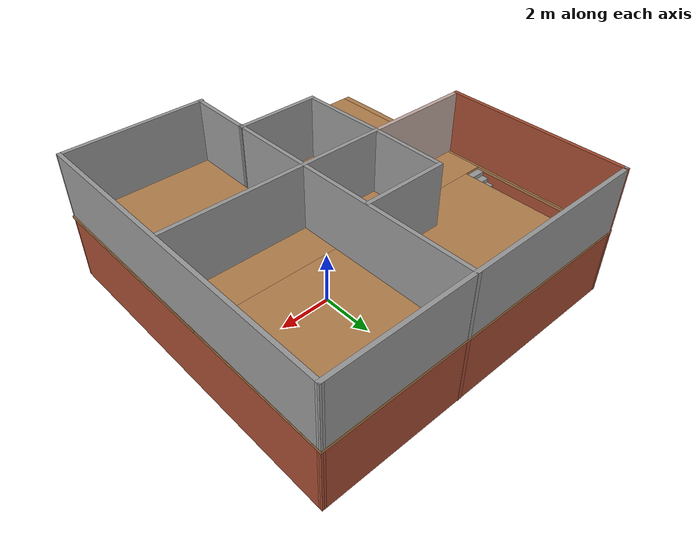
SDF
<?xml version='1.0'?>
<sdf version='1.6'>
  <model name='Robot_House'>
    <pose frame=''>-0.952364 -0.459464 0 0 -0 0</pose>
    <link name='Floor_2'>
      <pose frame=''>0 0 2.5 0 -0 0</pose>
      <visual name='Floor_2_Visual_0'>
        <pose frame=''>-6.23247 0 0.05 0 -0 0</pose>
        <geometry>
          <box>
            <size>0.241447 12.6695 0.1</size>
          </box>
        </geometry>
        <material>
          <script>
            <uri>file://media/materials/scripts/gazebo.material</uri>
            <name>Gazebo/Wood</name>
          </script>
          <ambient>1 1 1 1</ambient>
        </material>
      </visual>
      <collision name='Floor_2_Collision_0'>
        <geometry>
          <box>
            <size>0.241447 12.6695 0.1</size>
          </box>
        </geometry>
        <pose frame=''>-6.23247 0 0.05 0 -0 0</pose>
      </collision>
      <visual name='Floor_2_Visual_1'>
        <pose frame=''>0.120724 -2.69599 0.05 0 -0 0</pose>
        <geometry>
          <box>
            <size>12.4649 7.27757 0.1</size>
          </box>
        </geometry>
        <material>
          <script>
            <uri>file://media/materials/scripts/gazebo.material</uri>
            <name>Gazebo/Wood</name>
          </script>
          <ambient>1 1 1 1</ambient>
        </material>
      </visual>
      <collision name='Floor_2_Collision_1'>
        <geometry>
          <box>
            <size>12.4649 7.27757 0.1</size>
          </box>
        </geometry>
        <pose frame=''>0.120724 -2.69599 0.05 0 -0 0</pose>
      </collision>
      <visual name='Floor_2_Visual_2'>
        <pose frame=''>0.465224 3.63879 0.05 0 -0 0</pose>
        <geometry>
          <box>
            <size>11.7759 5.39197 0.1</size>
          </box>
        </geometry>
        <material>
          <script>
            <uri>file://media/materials/scripts/gazebo.material</uri>
            <name>Gazebo/Wood</name>
          </script>
          <ambient>1 1 1 1</ambient>
        </material>
      </visual>
      <collision name='Floor_2_Collision_2'>
        <geometry>
          <box>
            <size>11.7759 5.39197 0.1</size>
          </box>
        </geometry>
        <pose frame=''>0.465224 3.63879 0.05 0 -0 0</pose>
      </collision>
      <visual name='Floor_2_Visual_3'>
        <pose frame=''>-5.76724 5.52079 0.05 0 -0 0</pose>
        <geometry>
          <box>
            <size>0.689 1.62797 0.1</size>
          </box>
        </geometry>
        <material>
          <script>
            <uri>file://media/materials/scripts/gazebo.material</uri>
            <name>Gazebo/Wood</name>
          </script>
          <ambient>1 1 1 1</ambient>
        </material>
      </visual>
      <collision name='Floor_2_Collision_3'>
        <geometry>
          <box>
            <size>0.689 1.62797 0.1</size>
          </box>
        </geometry>
        <pose frame=''>-5.76724 5.52079 0.05 0 -0 0</pose>
      </collision>
    </link>
    <link name='Stairs_0'>
      <visual name='Stairs_0_Visual_0'>
        <pose frame=''>-5.76724 4.58133 0.083333 0 -0 0</pose>
        <geometry>
          <box>
            <size>0.689 0.250933 0.166667</size>
          </box>
        </geometry>
        <material>
          <script>
            <uri>file://media/materials/scripts/gazebo.material</uri>
            <name>Gazebo/Grey</name>
          </script>
          <ambient>1 1 1 1</ambient>
        </material>
      </visual>
      <collision name='Stairs_0_Collision_0'>
        <geometry>
          <box>
            <size>0.689 0.250933 0.166667</size>
          </box>
        </geometry>
        <pose frame=''>-5.76724 4.58133 0.083333 0 -0 0</pose>
      </collision>
      <visual name='Stairs_0_Visual_1'>
        <pose frame=''>-5.76724 4.3304 0.25 0 -0 0</pose>
        <geometry>
          <box>
            <size>0.689 0.250933 0.166667</size>
          </box>
        </geometry>
        <material>
          <script>
            <uri>file://media/materials/scripts/gazebo.material</uri>
            <name>Gazebo/Grey</name>
          </script>
          <ambient>1 1 1 1</ambient>
        </material>
      </visual>
      <collision name='Stairs_0_Collision_1'>
        <geometry>
          <box>
            <size>0.689 0.250933 0.166667</size>
          </box>
        </geometry>
        <pose frame=''>-5.76724 4.3304 0.25 0 -0 0</pose>
      </collision>
      <visual name='Stairs_0_Visual_2'>
        <pose frame=''>-5.76724 4.07947 0.416667 0 -0 0</pose>
        <geometry>
          <box>
            <size>0.689 0.250933 0.166667</size>
          </box>
        </geometry>
        <material>
          <script>
            <uri>file://media/materials/scripts/gazebo.material</uri>
            <name>Gazebo/Grey</name>
          </script>
          <ambient>1 1 1 1</ambient>
        </material>
      </visual>
      <collision name='Stairs_0_Collision_2'>
        <geometry>
          <box>
            <size>0.689 0.250933 0.166667</size>
          </box>
        </geometry>
        <pose frame=''>-5.76724 4.07947 0.416667 0 -0 0</pose>
      </collision>
      <visual name='Stairs_0_Visual_3'>
        <pose frame=''>-5.76724 3.82853 0.583333 0 -0 0</pose>
        <geometry>
          <box>
            <size>0.689 0.250933 0.166667</size>
          </box>
        </geometry>
        <material>
          <script>
            <uri>file://media/materials/scripts/gazebo.material</uri>
            <name>Gazebo/Grey</name>
          </script>
          <ambient>1 1 1 1</ambient>
        </material>
      </visual>
      <collision name='Stairs_0_Collision_3'>
        <geometry>
          <box>
            <size>0.689 0.250933 0.166667</size>
          </box>
        </geometry>
        <pose frame=''>-5.76724 3.82853 0.583333 0 -0 0</pose>
      </collision>
      <visual name='Stairs_0_Visual_4'>
        <pose frame=''>-5.76724 3.5776 0.75 0 -0 0</pose>
        <geometry>
          <box>
            <size>0.689 0.250933 0.166667</size>
          </box>
        </geometry>
        <material>
          <script>
            <uri>file://media/materials/scripts/gazebo.material</uri>
            <name>Gazebo/Grey</name>
          </script>
          <ambient>1 1 1 1</ambient>
        </material>
      </visual>
      <collision name='Stairs_0_Collision_4'>
        <geometry>
          <box>
            <size>0.689 0.250933 0.166667</size>
          </box>
        </geometry>
        <pose frame=''>-5.76724 3.5776 0.75 0 -0 0</pose>
      </collision>
      <visual name='Stairs_0_Visual_5'>
        <pose frame=''>-5.76724 3.32667 0.916667 0 -0 0</pose>
        <geometry>
          <box>
            <size>0.689 0.250933 0.166667</size>
          </box>
        </geometry>
        <material>
          <script>
            <uri>file://media/materials/scripts/gazebo.material</uri>
            <name>Gazebo/Grey</name>
          </script>
          <ambient>1 1 1 1</ambient>
        </material>
      </visual>
      <collision name='Stairs_0_Collision_5'>
        <geometry>
          <box>
            <size>0.689 0.250933 0.166667</size>
          </box>
        </geometry>
        <pose frame=''>-5.76724 3.32667 0.916667 0 -0 0</pose>
      </collision>
      <visual name='Stairs_0_Visual_6'>
        <pose frame=''>-5.76724 3.07573 1.08333 0 -0 0</pose>
        <geometry>
          <box>
            <size>0.689 0.250933 0.166667</size>
          </box>
        </geometry>
        <material>
          <script>
            <uri>file://media/materials/scripts/gazebo.material</uri>
            <name>Gazebo/Grey</name>
          </script>
          <ambient>1 1 1 1</ambient>
        </material>
      </visual>
      <collision name='Stairs_0_Collision_6'>
        <geometry>
          <box>
            <size>0.689 0.250933 0.166667</size>
          </box>
        </geometry>
        <pose frame=''>-5.76724 3.07573 1.08333 0 -0 0</pose>
      </collision>
      <visual name='Stairs_0_Visual_7'>
        <pose frame=''>-5.76724 2.8248 1.25 0 -0 0</pose>
        <geometry>
          <box>
            <size>0.689 0.250933 0.166667</size>
          </box>
        </geometry>
        <material>
          <script>
            <uri>file://media/materials/scripts/gazebo.material</uri>
            <name>Gazebo/Grey</name>
          </script>
          <ambient>1 1 1 1</ambient>
        </material>
      </visual>
      <collision name='Stairs_0_Collision_7'>
        <geometry>
          <box>
            <size>0.689 0.250933 0.166667</size>
          </box>
        </geometry>
        <pose frame=''>-5.76724 2.8248 1.25 0 -0 0</pose>
      </collision>
      <visual name='Stairs_0_Visual_8'>
        <pose frame=''>-5.76724 2.57387 1.41667 0 -0 0</pose>
        <geometry>
          <box>
            <size>0.689 0.250933 0.166667</size>
          </box>
        </geometry>
        <material>
          <script>
            <uri>file://media/materials/scripts/gazebo.material</uri>
            <name>Gazebo/Grey</name>
          </script>
          <ambient>1 1 1 1</ambient>
        </material>
      </visual>
      <collision name='Stairs_0_Collision_8'>
        <geometry>
          <box>
            <size>0.689 0.250933 0.166667</size>
          </box>
        </geometry>
        <pose frame=''>-5.76724 2.57387 1.41667 0 -0 0</pose>
      </collision>
      <visual name='Stairs_0_Visual_9'>
        <pose frame=''>-5.76724 2.32293 1.58333 0 -0 0</pose>
        <geometry>
          <box>
            <size>0.689 0.250933 0.166667</size>
          </box>
        </geometry>
        <material>
          <script>
            <uri>file://media/materials/scripts/gazebo.material</uri>
            <name>Gazebo/Grey</name>
          </script>
          <ambient>1 1 1 1</ambient>
        </material>
      </visual>
      <collision name='Stairs_0_Collision_9'>
        <geometry>
          <box>
            <size>0.689 0.250933 0.166667</size>
          </box>
        </geometry>
        <pose frame=''>-5.76724 2.32293 1.58333 0 -0 0</pose>
      </collision>
      <visual name='Stairs_0_Visual_10'>
        <pose frame=''>-5.76724 2.072 1.75 0 -0 0</pose>
        <geometry>
          <box>
            <size>0.689 0.250933 0.166667</size>
          </box>
        </geometry>
        <material>
          <script>
            <uri>file://media/materials/scripts/gazebo.material</uri>
            <name>Gazebo/Grey</name>
          </script>
          <ambient>1 1 1 1</ambient>
        </material>
      </visual>
      <collision name='Stairs_0_Collision_10'>
        <geometry>
          <box>
            <size>0.689 0.250933 0.166667</size>
          </box>
        </geometry>
        <pose frame=''>-5.76724 2.072 1.75 0 -0 0</pose>
      </collision>
      <visual name='Stairs_0_Visual_11'>
        <pose frame=''>-5.76724 1.82107 1.91667 0 -0 0</pose>
        <geometry>
          <box>
            <size>0.689 0.250933 0.166667</size>
          </box>
        </geometry>
        <material>
          <script>
            <uri>file://media/materials/scripts/gazebo.material</uri>
            <name>Gazebo/Grey</name>
          </script>
          <ambient>1 1 1 1</ambient>
        </material>
      </visual>
      <collision name='Stairs_0_Collision_11'>
        <geometry>
          <box>
            <size>0.689 0.250933 0.166667</size>
          </box>
        </geometry>
        <pose frame=''>-5.76724 1.82107 1.91667 0 -0 0</pose>
      </collision>
      <visual name='Stairs_0_Visual_12'>
        <pose frame=''>-5.76724 1.57013 2.08333 0 -0 0</pose>
        <geometry>
          <box>
            <size>0.689 0.250933 0.166667</size>
          </box>
        </geometry>
        <material>
          <script>
            <uri>file://media/materials/scripts/gazebo.material</uri>
            <name>Gazebo/Grey</name>
          </script>
          <ambient>1 1 1 1</ambient>
        </material>
      </visual>
      <collision name='Stairs_0_Collision_12'>
        <geometry>
          <box>
            <size>0.689 0.250933 0.166667</size>
          </box>
        </geometry>
        <pose frame=''>-5.76724 1.57013 2.08333 0 -0 0</pose>
      </collision>
      <visual name='Stairs_0_Visual_13'>
        <pose frame=''>-5.76724 1.3192 2.25 0 -0 0</pose>
        <geometry>
          <box>
            <size>0.689 0.250933 0.166667</size>
          </box>
        </geometry>
        <material>
          <script>
            <uri>file://media/materials/scripts/gazebo.material</uri>
            <name>Gazebo/Grey</name>
          </script>
          <ambient>1 1 1 1</ambient>
        </material>
      </visual>
      <collision name='Stairs_0_Collision_13'>
        <geometry>
          <box>
            <size>0.689 0.250933 0.166667</size>
          </box>
        </geometry>
        <pose frame=''>-5.76724 1.3192 2.25 0 -0 0</pose>
      </collision>
      <visual name='Stairs_0_Visual_14'>
        <pose frame=''>-5.76724 1.06827 2.41667 0 -0 0</pose>
        <geometry>
          <box>
            <size>0.689 0.250933 0.166667</size>
          </box>
        </geometry>
        <material>
          <script>
            <uri>file://media/materials/scripts/gazebo.material</uri>
            <name>Gazebo/Grey</name>
          </script>
          <ambient>1 1 1 1</ambient>
        </material>
      </visual>
      <collision name='Stairs_0_Collision_14'>
        <geometry>
          <box>
            <size>0.689 0.250933 0.166667</size>
          </box>
        </geometry>
        <pose frame=''>-5.76724 1.06827 2.41667 0 -0 0</pose>
      </collision>
    </link>
    <link name='Wall_0'>
      <collision name='Wall_0_Collision'>
        <geometry>
          <box>
            <size>12.699 0.15 2.5</size>
          </box>
        </geometry>
        <pose frame=''>0 0 1.25 0 -0 0</pose>
      </collision>
      <visual name='Wall_0_Visual'>
        <pose frame=''>0 0 1.25 0 -0 0</pose>
        <geometry>
          <box>
            <size>12.699 0.15 2.5</size>
          </box>
        </geometry>
        <material>
          <script>
            <uri>file://media/materials/scripts/gazebo.material</uri>
            <name>Gazebo/Bricks</name>
          </script>
          <ambient>1 1 1 1</ambient>
        </material>
      </visual>
      <pose frame=''>0.003418 6.25006 0 0 0 -0.000422</pose>
    </link>
    <link name='Wall_1'>
      <collision name='Wall_1_Collision'>
        <geometry>
          <box>
            <size>12.6568 0.15 2.5</size>
          </box>
        </geometry>
        <pose frame=''>0 0 1.25 0 -0 0</pose>
      </collision>
      <visual name='Wall_1_Visual'>
        <pose frame=''>0 0 1.25 0 -0 0</pose>
        <geometry>
          <box>
            <size>12.6568 0.15 2.5</size>
          </box>
        </geometry>
        <material>
          <script>
            <uri>file://media/materials/scripts/gazebo.material</uri>
            <name>Gazebo/Bricks</name>
          </script>
          <ambient>1 1 1 1</ambient>
        </material>
      </visual>
      <pose frame=''>6.25633 -0.005954 0 0 0 -1.57425</pose>
    </link>
    <link name='Wall_11'>
      <pose frame=''>0.916721 1.20977 0 0 0 -1.5708</pose>
      <visual name='Wall_11_Visual_0'>
        <pose frame=''>-2.6324 0 1.25 0 -0 0</pose>
        <geometry>
          <box>
            <size>4.98521 0.15 2.5</size>
          </box>
        </geometry>
        <material>
          <script>
            <uri>file://media/materials/scripts/gazebo.material</uri>
            <name>Gazebo/Bricks</name>
          </script>
          <ambient>1 1 1 1</ambient>
        </material>
      </visual>
      <collision name='Wall_11_Collision_0'>
        <geometry>
          <box>
            <size>4.98521 0.15 2.5</size>
          </box>
        </geometry>
        <pose frame=''>-2.6324 0 1.25 0 -0 0</pose>
      </collision>
      <visual name='Wall_11_Visual_1'>
        <pose frame=''>3.05806 0 1.25 0 -0 0</pose>
        <geometry>
          <box>
            <size>4.13388 0.15 2.5</size>
          </box>
        </geometry>
        <material>
          <script>
            <uri>file://media/materials/scripts/gazebo.material</uri>
            <name>Gazebo/Bricks</name>
          </script>
          <ambient>1 1 1 1</ambient>
        </material>
      </visual>
      <collision name='Wall_11_Collision_1'>
        <geometry>
          <box>
            <size>4.13388 0.15 2.5</size>
          </box>
        </geometry>
        <pose frame=''>3.05806 0 1.25 0 -0 0</pose>
      </collision>
      <visual name='Wall_11_Visual_2'>
        <pose frame=''>0.425662 0 2.25 0 -0 0</pose>
        <geometry>
          <box>
            <size>1.13091 0.15 0.5</size>
          </box>
        </geometry>
        <material>
          <script>
            <uri>file://media/materials/scripts/gazebo.material</uri>
            <name>Gazebo/Bricks</name>
          </script>
          <ambient>1 1 1 1</ambient>
        </material>
      </visual>
      <collision name='Wall_11_Collision_2'>
        <geometry>
          <box>
            <size>1.13091 0.15 0.5</size>
          </box>
        </geometry>
        <pose frame=''>0.425662 0 2.25 0 -0 0</pose>
      </collision>
    </link>
    <link name='Wall_13'>
      <pose frame=''>1.93983 -0.62738 0 0 -0 0</pose>
      <visual name='Wall_13_Visual_0'>
        <pose frame=''>-3.93716 0 1.25 0 -0 0</pose>
        <geometry>
          <box>
            <size>0.625682 0.15 2.5</size>
          </box>
        </geometry>
        <material>
          <script>
            <uri>file://media/materials/scripts/gazebo.material</uri>
            <name>Gazebo/Bricks</name>
          </script>
          <ambient>1 1 1 1</ambient>
        </material>
      </visual>
      <collision name='Wall_13_Collision_0'>
        <geometry>
          <box>
            <size>0.625682 0.15 2.5</size>
          </box>
        </geometry>
        <pose frame=''>-3.93716 0 1.25 0 -0 0</pose>
      </collision>
      <visual name='Wall_13_Visual_1'>
        <pose frame=''>-0.757544 0 1.25 0 -0 0</pose>
        <geometry>
          <box>
            <size>3.20946 0.15 2.5</size>
          </box>
        </geometry>
        <material>
          <script>
            <uri>file://media/materials/scripts/gazebo.material</uri>
            <name>Gazebo/Bricks</name>
          </script>
          <ambient>1 1 1 1</ambient>
        </material>
      </visual>
      <collision name='Wall_13_Collision_1'>
        <geometry>
          <box>
            <size>3.20946 0.15 2.5</size>
          </box>
        </geometry>
        <pose frame=''>-0.757544 0 1.25 0 -0 0</pose>
      </collision>
      <visual name='Wall_13_Visual_2'>
        <pose frame=''>3.2198 0 1.25 0 -0 0</pose>
        <geometry>
          <box>
            <size>2.0604 0.15 2.5</size>
          </box>
        </geometry>
        <material>
          <script>
            <uri>file://media/materials/scripts/gazebo.material</uri>
            <name>Gazebo/Bricks</name>
          </script>
          <ambient>1 1 1 1</ambient>
        </material>
      </visual>
      <collision name='Wall_13_Collision_2'>
        <geometry>
          <box>
            <size>2.0604 0.15 2.5</size>
          </box>
        </geometry>
        <pose frame=''>3.2198 0 1.25 0 -0 0</pose>
      </collision>
      <visual name='Wall_13_Visual_3'>
        <pose frame=''>-2.9933 0 2.25 0 -0 0</pose>
        <geometry>
          <box>
            <size>1.26204 0.15 0.5</size>
          </box>
        </geometry>
        <material>
          <script>
            <uri>file://media/materials/scripts/gazebo.material</uri>
            <name>Gazebo/Bricks</name>
          </script>
          <ambient>1 1 1 1</ambient>
        </material>
      </visual>
      <collision name='Wall_13_Collision_3'>
        <geometry>
          <box>
            <size>1.26204 0.15 0.5</size>
          </box>
        </geometry>
        <pose frame=''>-2.9933 0 2.25 0 -0 0</pose>
      </collision>
      <visual name='Wall_13_Visual_4'>
        <pose frame=''>1.51839 0 2.25 0 -0 0</pose>
        <geometry>
          <box>
            <size>1.34242 0.15 0.5</size>
          </box>
        </geometry>
        <material>
          <script>
            <uri>file://media/materials/scripts/gazebo.material</uri>
            <name>Gazebo/Bricks</name>
          </script>
          <ambient>1 1 1 1</ambient>
        </material>
      </visual>
      <collision name='Wall_13_Collision_4'>
        <geometry>
          <box>
            <size>1.34242 0.15 0.5</size>
          </box>
        </geometry>
        <pose frame=''>1.51839 0 2.25 0 -0 0</pose>
      </collision>
    </link>
    <link name='Wall_18'>
      <collision name='Wall_18_Collision'>
        <geometry>
          <box>
            <size>3.25 0.15 2.5</size>
          </box>
        </geometry>
        <pose frame=''>0 0 1.25 0 -0 0</pose>
      </collision>
      <visual name='Wall_18_Visual'>
        <pose frame=''>0 0 1.25 0 -0 0</pose>
        <geometry>
          <box>
            <size>3.25 0.15 2.5</size>
          </box>
        </geometry>
        <material>
          <script>
            <uri>file://media/materials/scripts/gazebo.material</uri>
            <name>Gazebo/Bricks</name>
          </script>
          <ambient>1 1 1 1</ambient>
        </material>
      </visual>
      <pose frame=''>-0.673735 2.21467 0 0 -0 3.14159</pose>
    </link>
    <link name='Wall_19'>
      <pose frame=''>-2.2194 0.783589 0 0 0 -1.56772</pose>
      <visual name='Wall_19_Visual_0'>
        <pose frame=''>-0.997365 0 1.25 0 -0 0</pose>
        <geometry>
          <box>
            <size>0.977681 0.15 2.5</size>
          </box>
        </geometry>
        <material>
          <script>
            <uri>file://media/materials/scripts/gazebo.material</uri>
            <name>Gazebo/Bricks</name>
          </script>
          <ambient>1 1 1 1</ambient>
        </material>
      </visual>
      <collision name='Wall_19_Collision_0'>
        <geometry>
          <box>
            <size>0.977681 0.15 2.5</size>
          </box>
        </geometry>
        <pose frame=''>-0.997365 0 1.25 0 -0 0</pose>
      </collision>
      <visual name='Wall_19_Visual_1'>
        <pose frame=''>0.979067 0 1.25 0 -0 0</pose>
        <geometry>
          <box>
            <size>1.01428 0.15 2.5</size>
          </box>
        </geometry>
        <material>
          <script>
            <uri>file://media/materials/scripts/gazebo.material</uri>
            <name>Gazebo/Bricks</name>
          </script>
          <ambient>1 1 1 1</ambient>
        </material>
      </visual>
      <collision name='Wall_19_Collision_1'>
        <geometry>
          <box>
            <size>1.01428 0.15 2.5</size>
          </box>
        </geometry>
        <pose frame=''>0.979067 0 1.25 0 -0 0</pose>
      </collision>
      <visual name='Wall_19_Visual_2'>
        <pose frame=''>-0.018298 0 2.25 0 -0 0</pose>
        <geometry>
          <box>
            <size>0.980454 0.15 0.5</size>
          </box>
        </geometry>
        <material>
          <script>
            <uri>file://media/materials/scripts/gazebo.material</uri>
            <name>Gazebo/Bricks</name>
          </script>
          <ambient>1 1 1 1</ambient>
        </material>
      </visual>
      <collision name='Wall_19_Collision_2'>
        <geometry>
          <box>
            <size>0.980454 0.15 0.5</size>
          </box>
        </geometry>
        <pose frame=''>-0.018298 0 2.25 0 -0 0</pose>
      </collision>
    </link>
    <link name='Wall_2'>
      <pose frame=''>3.55972 -6.25932 0 0 -0 3.14159</pose>
      <visual name='Wall_2_Visual_0'>
        <pose frame=''>-1.28179 0 1.25 0 -0 0</pose>
        <geometry>
          <box>
            <size>2.93642 0.15 2.5</size>
          </box>
        </geometry>
        <material>
          <script>
            <uri>file://media/materials/scripts/gazebo.material</uri>
            <name>Gazebo/Bricks</name>
          </script>
          <ambient>1 1 1 1</ambient>
        </material>
      </visual>
      <collision name='Wall_2_Collision_0'>
        <geometry>
          <box>
            <size>2.93642 0.15 2.5</size>
          </box>
        </geometry>
        <pose frame=''>-1.28179 0 1.25 0 -0 0</pose>
      </collision>
      <visual name='Wall_2_Visual_1'>
        <pose frame=''>1.46821 0 0.25 0 -0 0</pose>
        <geometry>
          <box>
            <size>2.56358 0.15 0.5</size>
          </box>
        </geometry>
        <material>
          <script>
            <uri>file://media/materials/scripts/gazebo.material</uri>
            <name>Gazebo/Bricks</name>
          </script>
          <ambient>1 1 1 1</ambient>
        </material>
      </visual>
      <collision name='Wall_2_Collision_1'>
        <geometry>
          <box>
            <size>2.56358 0.15 0.5</size>
          </box>
        </geometry>
        <pose frame=''>1.46821 0 0.25 0 -0 0</pose>
      </collision>
      <visual name='Wall_2_Visual_2'>
        <pose frame=''>1.86821 0 1.5 0 -0 0</pose>
        <geometry>
          <box>
            <size>1.76358 0.15 2</size>
          </box>
        </geometry>
        <material>
          <script>
            <uri>file://media/materials/scripts/gazebo.material</uri>
            <name>Gazebo/Bricks</name>
          </script>
          <ambient>1 1 1 1</ambient>
        </material>
      </visual>
      <collision name='Wall_2_Collision_2'>
        <geometry>
          <box>
            <size>1.76358 0.15 2</size>
          </box>
        </geometry>
        <pose frame=''>1.86821 0 1.5 0 -0 0</pose>
      </collision>
      <visual name='Wall_2_Visual_3'>
        <pose frame=''>0.586421 0 1.9 0 -0 0</pose>
        <geometry>
          <box>
            <size>0.8 0.15 1.2</size>
          </box>
        </geometry>
        <material>
          <script>
            <uri>file://media/materials/scripts/gazebo.material</uri>
            <name>Gazebo/Bricks</name>
          </script>
          <ambient>1 1 1 1</ambient>
        </material>
      </visual>
      <collision name='Wall_2_Collision_3'>
        <geometry>
          <box>
            <size>0.8 0.15 1.2</size>
          </box>
        </geometry>
        <pose frame=''>0.586421 0 1.9 0 -0 0</pose>
      </collision>
    </link>
    <link name='Wall_3'>
      <collision name='Wall_3_Collision'>
        <geometry>
          <box>
            <size>2.63693 0.15 2.5</size>
          </box>
        </geometry>
        <pose frame=''>0 0 1.25 0 -0 0</pose>
      </collision>
      <visual name='Wall_3_Visual'>
        <pose frame=''>0 0 1.25 0 -0 0</pose>
        <geometry>
          <box>
            <size>2.63693 0.15 2.5</size>
          </box>
        </geometry>
        <material>
          <script>
            <uri>file://media/materials/scripts/gazebo.material</uri>
            <name>Gazebo/Bricks</name>
          </script>
          <ambient>1 1 1 1</ambient>
        </material>
      </visual>
      <pose frame=''>0.932777 -5.01588 0 0 -0 1.56468</pose>
    </link>
    <link name='Wall_4'>
      <collision name='Wall_4_Collision'>
        <geometry>
          <box>
            <size>0.15 0.15 2.5</size>
          </box>
        </geometry>
        <pose frame=''>0 0 1.25 0 -0 0</pose>
      </collision>
      <visual name='Wall_4_Visual'>
        <pose frame=''>0 0 1.25 0 -0 0</pose>
        <geometry>
          <box>
            <size>0.15 0.15 2.5</size>
          </box>
        </geometry>
        <material>
          <script>
            <uri>file://media/materials/scripts/gazebo.material</uri>
            <name>Gazebo/Grey</name>
          </script>
          <ambient>1 1 1 1</ambient>
        </material>
      </visual>
      <pose frame=''>0.940381 -3.77244 0 0 -0 0</pose>
    </link>
    <link name='Wall_47'>
      <collision name='Wall_47_Collision'>
        <geometry>
          <box>
            <size>12.6786 0.15 2.5</size>
          </box>
        </geometry>
        <pose frame=''>0 0 1.25 0 -0 0</pose>
      </collision>
      <visual name='Wall_47_Visual'>
        <pose frame=''>0 0 1.25 0 -0 0</pose>
        <geometry>
          <box>
            <size>12.6786 0.15 2.5</size>
          </box>
        </geometry>
        <material>
          <script>
            <uri>file://media/materials/scripts/gazebo.material</uri>
            <name>Gazebo/Grey</name>
          </script>
          <ambient>1 1 1 1</ambient>
        </material>
      </visual>
      <pose frame=''>0.013648 6.24994 2.5 0 0 -0.000404</pose>
    </link>
    <link name='Wall_48'>
      <collision name='Wall_48_Collision'>
        <geometry>
          <box>
            <size>12.6568 0.15 2.5</size>
          </box>
        </geometry>
        <pose frame=''>0 0 1.25 0 -0 0</pose>
      </collision>
      <visual name='Wall_48_Visual'>
        <pose frame=''>0 0 1.25 0 -0 0</pose>
        <geometry>
          <box>
            <size>12.6568 0.15 2.5</size>
          </box>
        </geometry>
        <material>
          <script>
            <uri>file://media/materials/scripts/gazebo.material</uri>
            <name>Gazebo/Grey</name>
          </script>
          <ambient>1 1 1 1</ambient>
        </material>
      </visual>
      <pose frame=''>6.25633 -0.005954 2.5 0 0 -1.57425</pose>
    </link>
    <link name='Wall_49'>
      <collision name='Wall_49_Collision'>
        <geometry>
          <box>
            <size>5.5 0.15 2.5</size>
          </box>
        </geometry>
        <pose frame=''>0 0 1.25 0 -0 0</pose>
      </collision>
      <visual name='Wall_49_Visual'>
        <pose frame=''>0 0 1.25 0 -0 0</pose>
        <geometry>
          <box>
            <size>5.5 0.15 2.5</size>
          </box>
        </geometry>
        <material>
          <script>
            <uri>file://media/materials/scripts/gazebo.material</uri>
            <name>Gazebo/Grey</name>
          </script>
          <ambient>1 1 1 1</ambient>
        </material>
      </visual>
      <pose frame=''>3.55972 -6.25932 2.5 0 -0 3.14159</pose>
    </link>
    <link name='Wall_50'>
      <collision name='Wall_50_Collision'>
        <geometry>
          <box>
            <size>2.63693 0.15 2.5</size>
          </box>
        </geometry>
        <pose frame=''>0 0 1.25 0 -0 0</pose>
      </collision>
      <visual name='Wall_50_Visual'>
        <pose frame=''>0 0 1.25 0 -0 0</pose>
        <geometry>
          <box>
            <size>2.63693 0.15 2.5</size>
          </box>
        </geometry>
        <material>
          <script>
            <uri>file://media/materials/scripts/gazebo.material</uri>
            <name>Gazebo/Grey</name>
          </script>
          <ambient>1 1 1 1</ambient>
        </material>
      </visual>
      <pose frame=''>0.932777 -5.01588 2.5 0 -0 1.56468</pose>
    </link>
    <link name='Wall_51'>
      <collision name='Wall_51_Collision'>
        <geometry>
          <box>
            <size>0.15 0.15 2.5</size>
          </box>
        </geometry>
        <pose frame=''>0 0 1.25 0 -0 0</pose>
      </collision>
      <visual name='Wall_51_Visual'>
        <pose frame=''>0 0 1.25 0 -0 0</pose>
        <geometry>
          <box>
            <size>0.15 0.15 2.5</size>
          </box>
        </geometry>
        <material>
          <script>
            <uri>file://media/materials/scripts/gazebo.material</uri>
            <name>Gazebo/Grey</name>
          </script>
          <ambient>1 1 1 1</ambient>
        </material>
      </visual>
      <pose frame=''>0.940381 -3.77244 2.5 0 -0 0</pose>
    </link>
    <link name='Wall_52'>
      <collision name='Wall_52_Collision'>
        <geometry>
          <box>
            <size>3.25 0.15 2.5</size>
          </box>
        </geometry>
        <pose frame=''>0 0 1.25 0 -0 0</pose>
      </collision>
      <visual name='Wall_52_Visual'>
        <pose frame=''>0 0 1.25 0 -0 0</pose>
        <geometry>
          <box>
            <size>3.25 0.15 2.5</size>
          </box>
        </geometry>
        <material>
          <script>
            <uri>file://media/materials/scripts/gazebo.material</uri>
            <name>Gazebo/Grey</name>
          </script>
          <ambient>1 1 1 1</ambient>
        </material>
      </visual>
      <pose frame=''>-0.624828 -3.78765 2.5 0 -0 3.14159</pose>
    </link>
    <link name='Wall_53'>
      <collision name='Wall_53_Collision'>
        <geometry>
          <box>
            <size>3.32296 0.15 2.5</size>
          </box>
        </geometry>
        <pose frame=''>0 0 1.25 0 -0 0</pose>
      </collision>
      <visual name='Wall_53_Visual'>
        <pose frame=''>0 0 1.25 0 -0 0</pose>
        <geometry>
          <box>
            <size>3.32296 0.15 2.5</size>
          </box>
        </geometry>
        <material>
          <script>
            <uri>file://media/materials/scripts/gazebo.material</uri>
            <name>Gazebo/Grey</name>
          </script>
          <ambient>1 1 1 1</ambient>
        </material>
      </visual>
      <pose frame=''>-2.20063 -2.18649 2.5 0 -0 1.59665</pose>
    </link>
    <link name='Wall_54'>
      <collision name='Wall_54_Collision'>
        <geometry>
          <box>
            <size>4.18604 0.15 2.5</size>
          </box>
        </geometry>
        <pose frame=''>0 0 1.25 0 -0 0</pose>
      </collision>
      <visual name='Wall_54_Visual'>
        <pose frame=''>0 0 1.25 0 -0 0</pose>
        <geometry>
          <box>
            <size>4.18604 0.15 2.5</size>
          </box>
        </geometry>
        <material>
          <script>
            <uri>file://media/materials/scripts/gazebo.material</uri>
            <name>Gazebo/Grey</name>
          </script>
          <ambient>0.760784 0.662745 0.627451 1</ambient>
        </material>
      </visual>
      <pose frame=''>-4.25964 -0.585536 2.5 0 -0 3.13416</pose>
    </link>
    <link name='Wall_55'>
      <collision name='Wall_55_Collision'>
        <geometry>
          <box>
            <size>6.97329 0.15 2.5</size>
          </box>
        </geometry>
        <pose frame=''>0 0 1.25 0 -0 0</pose>
      </collision>
      <visual name='Wall_55_Visual'>
        <pose frame=''>0 0 1.25 0 -0 0</pose>
        <geometry>
          <box>
            <size>6.97329 0.15 2.5</size>
          </box>
        </geometry>
        <material>
          <script>
            <uri>file://media/materials/scripts/gazebo.material</uri>
            <name>Gazebo/Bricks</name>
          </script>
          <ambient>1 1 1 1</ambient>
        </material>
      </visual>
      <pose frame=''>-6.26414 2.84096 2.5 0 -0 1.56684</pose>
    </link>
    <link name='Wall_56'>
      <collision name='Wall_56_Collision'>
        <geometry>
          <box>
            <size>10.25 0.15 2.5</size>
          </box>
        </geometry>
        <pose frame=''>0 0 1.25 0 -0 0</pose>
      </collision>
      <visual name='Wall_56_Visual'>
        <pose frame=''>0 0 1.25 0 -0 0</pose>
        <geometry>
          <box>
            <size>10.25 0.15 2.5</size>
          </box>
        </geometry>
        <material>
          <script>
            <uri>file://media/materials/scripts/gazebo.material</uri>
            <name>Gazebo/Grey</name>
          </script>
          <ambient>1 1 1 1</ambient>
        </material>
      </visual>
      <pose frame=''>0.916721 1.20977 2.5 0 0 -1.5708</pose>
    </link>
    <link name='Wall_57'>
      <collision name='Wall_57_Collision'>
        <geometry>
          <box>
            <size>8.50651 0.15 2.5</size>
          </box>
        </geometry>
        <pose frame=''>0 0 1.25 0 -0 0</pose>
      </collision>
      <visual name='Wall_57_Visual'>
        <pose frame=''>0 0 1.25 0 -0 0</pose>
        <geometry>
          <box>
            <size>8.50651 0.15 2.5</size>
          </box>
        </geometry>
        <material>
          <script>
            <uri>file://media/materials/scripts/gazebo.material</uri>
            <name>Gazebo/Grey</name>
          </script>
          <ambient>1 1 1 1</ambient>
        </material>
      </visual>
      <pose frame=''>1.9366 -0.613958 2.5 0 0 -0.003212</pose>
    </link>
    <link name='Wall_58'>
      <collision name='Wall_58_Collision'>
        <geometry>
          <box>
            <size>3.25 0.15 2.5</size>
          </box>
        </geometry>
        <pose frame=''>0 0 1.25 0 -0 0</pose>
      </collision>
      <visual name='Wall_58_Visual'>
        <pose frame=''>0 0 1.25 0 -0 0</pose>
        <geometry>
          <box>
            <size>3.25 0.15 2.5</size>
          </box>
        </geometry>
        <material>
          <script>
            <uri>file://media/materials/scripts/gazebo.material</uri>
            <name>Gazebo/Grey</name>
          </script>
          <ambient>1 1 1 1</ambient>
        </material>
      </visual>
      <pose frame=''>-0.673735 2.21467 2.5 0 -0 3.14159</pose>
    </link>
    <link name='Wall_59'>
      <collision name='Wall_59_Collision'>
        <geometry>
          <box>
            <size>2.94515 0.15 2.5</size>
          </box>
        </geometry>
        <pose frame=''>0 0 1.25 0 -0 0</pose>
      </collision>
      <visual name='Wall_59_Visual'>
        <pose frame=''>0 0 1.25 0 -0 0</pose>
        <geometry>
          <box>
            <size>2.94515 0.15 2.5</size>
          </box>
        </geometry>
        <material>
          <script>
            <uri>file://media/materials/scripts/gazebo.material</uri>
            <name>Gazebo/Grey</name>
          </script>
          <ambient>1 1 1 1</ambient>
        </material>
      </visual>
      <pose frame=''>-2.23269 0.797011 2.5 0 0 -1.5772</pose>
    </link>
    <link name='Wall_6'>
      <pose frame=''>-0.624828 -3.78765 0 0 -0 3.14159</pose>
      <visual name='Wall_6_Visual_0'>
        <pose frame=''>-1.02172 0 1.25 0 -0 0</pose>
        <geometry>
          <box>
            <size>1.20656 0.15 2.5</size>
          </box>
        </geometry>
        <material>
          <script>
            <uri>file://media/materials/scripts/gazebo.material</uri>
            <name>Gazebo/Bricks</name>
          </script>
          <ambient>1 1 1 1</ambient>
        </material>
      </visual>
      <collision name='Wall_6_Collision_0'>
        <geometry>
          <box>
            <size>1.20656 0.15 2.5</size>
          </box>
        </geometry>
        <pose frame=''>-1.02172 0 1.25 0 -0 0</pose>
      </collision>
      <visual name='Wall_6_Visual_1'>
        <pose frame=''>1.19016 0 1.25 0 -0 0</pose>
        <geometry>
          <box>
            <size>0.869682 0.15 2.5</size>
          </box>
        </geometry>
        <material>
          <script>
            <uri>file://media/materials/scripts/gazebo.material</uri>
            <name>Gazebo/Bricks</name>
          </script>
          <ambient>1 1 1 1</ambient>
        </material>
      </visual>
      <collision name='Wall_6_Collision_1'>
        <geometry>
          <box>
            <size>0.869682 0.15 2.5</size>
          </box>
        </geometry>
        <pose frame=''>1.19016 0 1.25 0 -0 0</pose>
      </collision>
      <visual name='Wall_6_Visual_2'>
        <pose frame=''>0.168439 0 2.25 0 -0 0</pose>
        <geometry>
          <box>
            <size>1.17376 0.15 0.5</size>
          </box>
        </geometry>
        <material>
          <script>
            <uri>file://media/materials/scripts/gazebo.material</uri>
            <name>Gazebo/Bricks</name>
          </script>
          <ambient>1 1 1 1</ambient>
        </material>
      </visual>
      <collision name='Wall_6_Collision_2'>
        <geometry>
          <box>
            <size>1.17376 0.15 0.5</size>
          </box>
        </geometry>
        <pose frame=''>0.168439 0 2.25 0 -0 0</pose>
      </collision>
    </link>
    <link name='Wall_7'>
      <collision name='Wall_7_Collision'>
        <geometry>
          <box>
            <size>3.29555 0.15 2.5</size>
          </box>
        </geometry>
        <pose frame=''>0 0 1.25 0 -0 0</pose>
      </collision>
      <visual name='Wall_7_Visual'>
        <pose frame=''>0 0 1.25 0 -0 0</pose>
        <geometry>
          <box>
            <size>3.29555 0.15 2.5</size>
          </box>
        </geometry>
        <material>
          <script>
            <uri>file://media/materials/scripts/gazebo.material</uri>
            <name>Gazebo/Bricks</name>
          </script>
          <ambient>1 1 1 1</ambient>
        </material>
      </visual>
      <pose frame=''>-2.18734 -2.19991 0 0 -0 1.58842</pose>
    </link>
    <link name='Wall_8'>
      <pose frame=''>-4.23302 -0.612337 0 0 -0 3.13414</pose>
      <visual name='Wall_8_Visual_0'>
        <pose frame=''>-1.27245 0 1.25 0 -0 0</pose>
        <geometry>
          <box>
            <size>1.64114 0.15 2.5</size>
          </box>
        </geometry>
        <material>
          <script>
            <uri>file://media/materials/scripts/gazebo.material</uri>
            <name>Gazebo/Bricks</name>
          </script>
          <ambient>1 1 1 1</ambient>
        </material>
      </visual>
      <collision name='Wall_8_Collision_0'>
        <geometry>
          <box>
            <size>1.64114 0.15 2.5</size>
          </box>
        </geometry>
        <pose frame=''>-1.27245 0 1.25 0 -0 0</pose>
      </collision>
      <visual name='Wall_8_Visual_1'>
        <pose frame=''>0.820567 0 0.25 0 -0 0</pose>
        <geometry>
          <box>
            <size>2.54491 0.15 0.5</size>
          </box>
        </geometry>
        <material>
          <script>
            <uri>file://media/materials/scripts/gazebo.material</uri>
            <name>Gazebo/Bricks</name>
          </script>
          <ambient>1 1 1 1</ambient>
        </material>
      </visual>
      <collision name='Wall_8_Collision_1'>
        <geometry>
          <box>
            <size>2.54491 0.15 0.5</size>
          </box>
        </geometry>
        <pose frame=''>0.820567 0 0.25 0 -0 0</pose>
      </collision>
      <visual name='Wall_8_Visual_2'>
        <pose frame=''>1.41164 0 1.5 0 -0 0</pose>
        <geometry>
          <box>
            <size>1.36276 0.15 2</size>
          </box>
        </geometry>
        <material>
          <script>
            <uri>file://media/materials/scripts/gazebo.material</uri>
            <name>Gazebo/Bricks</name>
          </script>
          <ambient>1 1 1 1</ambient>
        </material>
      </visual>
      <collision name='Wall_8_Collision_2'>
        <geometry>
          <box>
            <size>1.36276 0.15 2</size>
          </box>
        </geometry>
        <pose frame=''>1.41164 0 1.5 0 -0 0</pose>
      </collision>
      <visual name='Wall_8_Visual_3'>
        <pose frame=''>0.139188 0 1.9 0 -0 0</pose>
        <geometry>
          <box>
            <size>1.18215 0.15 1.2</size>
          </box>
        </geometry>
        <material>
          <script>
            <uri>file://media/materials/scripts/gazebo.material</uri>
            <name>Gazebo/Bricks</name>
          </script>
          <ambient>1 1 1 1</ambient>
        </material>
      </visual>
      <collision name='Wall_8_Collision_3'>
        <geometry>
          <box>
            <size>1.18215 0.15 1.2</size>
          </box>
        </geometry>
        <pose frame=''>0.139188 0 1.9 0 -0 0</pose>
      </collision>
    </link>
    <link name='Wall_9'>
      <collision name='Wall_9_Collision'>
        <geometry>
          <box>
            <size>7 0.15 2.5</size>
          </box>
        </geometry>
        <pose frame=''>0 0 1.25 0 -0 0</pose>
      </collision>
      <visual name='Wall_9_Visual'>
        <pose frame=''>0 0 1.25 0 -0 0</pose>
        <geometry>
          <box>
            <size>7 0.15 2.5</size>
          </box>
        </geometry>
        <material>
          <script>
            <uri>file://media/materials/scripts/gazebo.material</uri>
            <name>Gazebo/Bricks</name>
          </script>
          <ambient>1 1 1 1</ambient>
        </material>
      </visual>
      <pose frame=''>-6.25098 2.82771 0 0 -0 1.5708</pose>
    </link>
    <static>1</static>
  </model>
</sdf>
